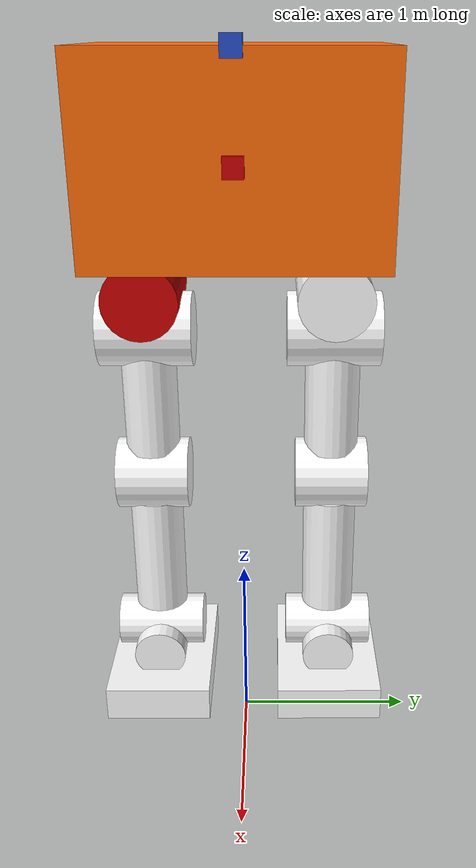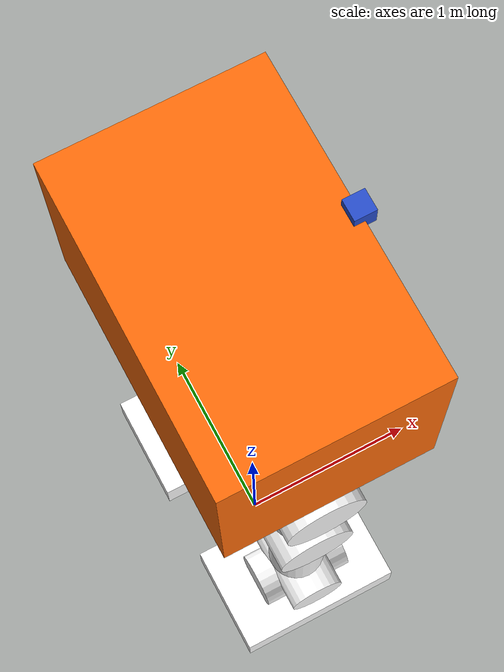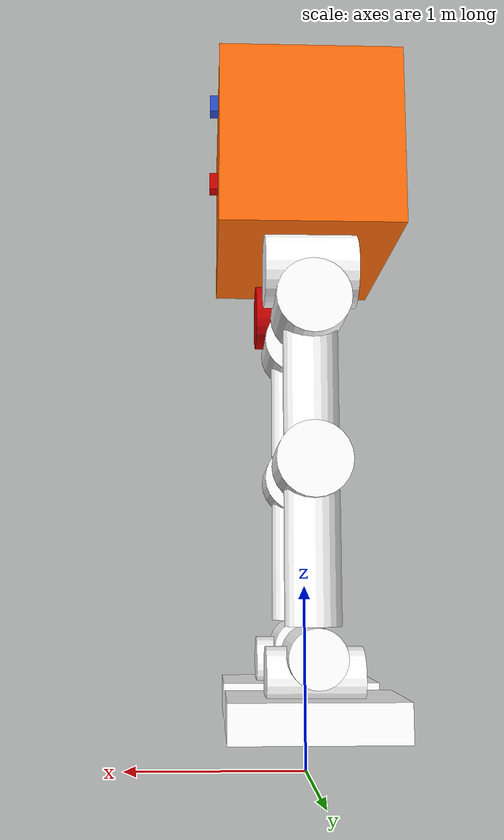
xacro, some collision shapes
<?xml version="1.0" ?>

<robot name="Asimo_E1" xmlns:xacro="http://www.ros.org/wiki/xacro">

 <!-- Start - Include -->

  <xacro:include filename="$(find asimo_e1_description)/urdf/links_joints.xacro"/>
  <xacro:include filename="$(find asimo_e1_description)/urdf/plugin.gazebo"/>
<!-- Start - Include -->
  <!-- Constants value-->
<xacro:property name="PI" value="3.1415926535897931"/>
<xacro:property name="M1" value="0.15"/>
<xacro:property name="M2" value="0.5"/>

<xacro:property name="cameraSize" value="0.1"/>
<xacro:property name="cameraMass" value="0.01"/>

<link_box name="camera"
              origin_rpy="0 0 0" origin_xyz="0 0 0"
              mass="${cameraMass}"
              ixx="1e-7" ixy="0" ixz="0" iyy="1e-7" iyz="0" izz="1e-7"
              size="${cameraSize} ${cameraSize} ${cameraSize}"
              color = 'red' />

<fixed_joint name="camera_joint" type="fixed"
                axis_xyz="0 1 0"
                origin_rpy="0 0 0" origin_xyz="0.5 0 3.4"
                parent="body" child="camera"/>

<fixed_joint name="hokuyo_joint" type="fixed"
                axis_xyz="0 1 0"
                origin_rpy="0 0 0" origin_xyz="0.5 0 3.9"
                parent="body" child="hokuyo"/>

<link_box name="body"
              origin_rpy="0 0 0" origin_xyz="0 0 3.4"
              mass="0.1"
              ixx="170.667" ixy="0" ixz="0"
              iyy="170.667" iyz="0"
              izz="170.667"
              size="1 1.5 1"
              color = 'orange' />

 <link_cylinder name="hip_l"
              origin_rpy="${PI/2}  0 ${PI/2}" origin_xyz="0 0 0"
              mass="${M2}"
              ixx="12.679" ixy="0" ixz="0"
              iyy="12.679" iyz="0"
              izz="0.651"
              color = 'red'
              radius="0.2" length="0.5" />

  <link_cylinder name="hip_r"
              origin_rpy="${PI/2}  0 ${PI/2}" origin_xyz="0 0 0"
              mass="${M1}"
              ixx="12.679" ixy="0" ixz="0"
              iyy="12.679" iyz="0"
              izz="0.651"
              color = 'white'
              radius="0.2" length="0.5" />

   <rot_joint name="body_hip_l" type="revolute"
           axis_xyz="1 0 0"
           origin_rpy="0 0 0" origin_xyz="0 -0.5 2.7"
           parent="body" child="hip_l"
           limit_e="1000" limit_l="-${PI/6}" limit_u="${PI/6}" limit_v="0.5" />

   <rot_joint name="body_hip_r" type="revolute"
           axis_xyz="1 0 0"
           origin_rpy="0 0 0" origin_xyz="0 0.5 2.7"
           parent="body" child="hip_r"
           limit_e="1000" limit_l="-${PI/6} " limit_u="${PI/6}" limit_v="0.5" />

  <link_cylinder name="lower_hip_r"
              origin_rpy="${PI/2}  0 0" origin_xyz="0 0 0"
              mass="${M1}"
              ixx="12.679" ixy="0" ixz="0"
              iyy="12.679" iyz="0"
              izz="0.651"
              color = 'white'
              radius="0.2" length="0.5" />

   <link_cylinder name="lower_hip_l"
              origin_rpy="${PI/2}  0 0" origin_xyz="0 0 0"
              mass="${M1}"
              ixx="12.679" ixy="0" ixz="0"
              iyy="12.679" iyz="0"
              izz="0.651"
              color = 'white'
              radius="0.2" length="0.5" />

  <rot_joint name="hip_to_lower_hip_r" type="revolute"
           axis_xyz="0 1 0"
           origin_rpy="0 0 0" origin_xyz="0 0 -0.2"
           parent="hip_r" child="lower_hip_r"
           limit_e="1000" limit_l="-${PI/3}" limit_u="${PI/6}" limit_v="0.5" />

  <rot_joint name="hip_to_lower_hip_l" type="revolute"
           axis_xyz="0 1 0"
           origin_rpy="0 0 0" origin_xyz="0 0 -0.2"
           parent="hip_l" child="lower_hip_l"
           limit_e="1000" limit_l="-${PI/3}" limit_u="${PI/3}" limit_v="0.5" />

  <link_cylinder name="leg_l"
              origin_rpy="0 0 ${PI/2}" origin_xyz="0 0 0"
              mass="${M1}"
              ixx="12.679" ixy="0" ixz="0"
              iyy="12.679" iyz="0"
              izz="0.651"
              color = 'white'
              radius="0.15" length="0.7" />

  <link_cylinder name="leg_r"
              origin_rpy="0 0 ${PI/2}" origin_xyz="0 0 0"
              mass="${M1}"
              ixx="12.679" ixy="0" ixz="0"
              iyy="12.679" iyz="0"
              izz="0.651"
              color = 'white'
              radius="0.15" length="0.7" />

  <fixed_joint name="lower_hip_to_leg_l" type="fixed"
           axis_xyz="0 0 1"
           origin_rpy="0 0 0" origin_xyz="0 0 -0.35"
           parent="lower_hip_l" child="leg_l"/>

  <fixed_joint name="lower_hip_to_leg_r" type="fixed"
           axis_xyz="0 0 1"
           origin_rpy="0 0 0" origin_xyz="0 0 -0.35"
           parent="lower_hip_r" child="leg_r" />

  <link_cylinder name="knee_r"
              origin_rpy="${PI/2}  0 0" origin_xyz="0 0 0"
              mass="${M1}"
              ixx="12.679" ixy="0" ixz="0"
              iyy="12.679" iyz="0"
              izz="0.651"
              color = 'white'
              radius="0.2" length="0.4" />

  <rot_joint name="leg_to_knee_r" type="revolute"
           axis_xyz="0 1 0"
           origin_rpy="0 0 0" origin_xyz="0 0 -0.5"
           parent="leg_r" child="knee_r"
           limit_e="2000" limit_l="0" limit_u="${PI/4}" limit_v="0.5" />

  <link_cylinder name="knee_l"
              origin_rpy="${PI/2}  0 0" origin_xyz="0 0 0"
              mass="${M1}"
              ixx="12.679" ixy="0" ixz="0"
              iyy="12.679" iyz="0"
              izz="0.651"
              color = 'white'
              radius="0.2" length="0.4" />

  <rot_joint name="leg_to_knee_l" type="revolute"
           axis_xyz="0 1 0"
           origin_rpy="0 0 0" origin_xyz="0 0 -0.5"
           parent="leg_l" child="knee_l"
           limit_e="2000" limit_l="0" limit_u="${PI/4}" limit_v="0.5" />

  <link_cylinder name="foot_l"
              origin_rpy="0 0 ${PI/2}" origin_xyz="0 0 0"
              mass="${M1}"
              ixx="12.679" ixy="0" ixz="0"
              iyy="12.679" iyz="0"
              izz="0.651"
              color = 'white'
              radius="0.15" length="0.7" />

  <fixed_joint name="knee_to_foot_l" type="fixed"
           axis_xyz="0 0 1"
           origin_rpy="0 0 0" origin_xyz="0 0 -0.5"
           parent="knee_l" child="foot_l" />

   <link_cylinder name="foot_r"
              origin_rpy="0 0 ${PI/2}" origin_xyz="0 0 0"
              mass="${M1}"
              ixx="12.679" ixy="0" ixz="0"
              iyy="12.679" iyz="0"
              izz="0.651"
              color = 'white'
              radius="0.15" length="0.7" />

  <fixed_joint name="knee_to_foot_r" type="fixed"
           axis_xyz="0 0 1"
           origin_rpy="0 0 0" origin_xyz="0 0 -0.5"
           parent="knee_r" child="foot_r" />

  <link_cylinder name="ankle_r"
              origin_rpy="${PI/2}  0 0" origin_xyz="0 0 0"
              mass="${M1}"
              ixx="12.679" ixy="0" ixz="0"
              iyy="12.679" iyz="0"
              izz="0.651"
              color = 'white'
              radius="0.15" length="0.5" />

  <rot_joint name="foot_to_ankle_r" type="revolute"
           axis_xyz="0 1 0"
           origin_rpy="0 0 0" origin_xyz="0 0 -0.5"
           parent="foot_r" child="ankle_r"
           limit_e="10000" limit_l="-${PI/4}" limit_u="${PI/24}" limit_v="0.5" />

  <link_cylinder name="ankle_l"
            origin_rpy="${PI/2}  0 0" origin_xyz="0 0 0"
            mass="${M1}"
            ixx="12.679" ixy="0" ixz="0"
            iyy="12.679" iyz="0"
            izz="0.651"
            color = 'white'
            radius="0.15" length="0.5" />

  <rot_joint name="foot_to_ankle_l" type="revolute"
           axis_xyz="0 1 0"
           origin_rpy="0 0 0" origin_xyz="0 0 -0.5"
           parent="foot_l" child="ankle_l"
           limit_e="10000" limit_l="-${PI/4}" limit_u="${PI/24}" limit_v="0.5" />

  <link_cylinder name="ankle_lower_r"
          origin_rpy="${PI/2}  0 ${PI/2}" origin_xyz="0 0 0"
          mass="${M1}"
          ixx="12.679" ixy="0" ixz="0"
          iyy="12.679" iyz="0"
          izz="0.651"
          color = 'white'
          radius="0.15" length="0.5" />

  <rot_joint name="ankle_to_ankle_lower_r" type="revolute"
           axis_xyz="0 1 0"
           origin_rpy="0 0 0" origin_xyz="0 0 -0.1"
           parent="ankle_r" child="ankle_lower_r"
           limit_e="10000" limit_l="-${PI/12}" limit_u="${PI/24}" limit_v="0.5" />

  <link_cylinder name="ankle_lower_l"
          origin_rpy="${PI/2}  0 ${PI/2}" origin_xyz="0 0 0"
          mass="${M1}"
          ixx="12.679" ixy="0" ixz="0"
          iyy="12.679" iyz="0"
          izz="0.651"
          color = 'white'
          radius="0.15" length="0.5" />

  <rot_joint name="ankle_to_ankle_lower_l" type="revolute"
           axis_xyz="0 1 0"
           origin_rpy="0 0 0" origin_xyz="0 0 -0.1"
           parent="ankle_l" child="ankle_lower_l"
           limit_e="10000" limit_l="-${PI/12}" limit_u="${PI/24}" limit_v="0.5" />

  <link_box name="toe_r"
              origin_rpy="${PI/2} 0 ${PI/2}" origin_xyz="0 0 0"
              mass="0.1"
              ixx="170.667" ixy="0" ixz="0"
              iyy="170.667" iyz="0"
              izz="170.667"
              color = 'white'
              size="0.6 0.2 0.9" />

  <fixed_joint name="ankle_lower_to_toe_r" type="fixed"
          axis_xyz="0 1 0"
          origin_rpy="0 0 0" origin_xyz="0 0 -0.2"
          parent="ankle_lower_r" child="toe_r"/>

  <link_box name="toe_l"
              origin_rpy="${PI/2} 0 ${PI/2}" origin_xyz="0 0 0"
              mass="0.1"
              ixx="170.667" ixy="0" ixz="0"
              iyy="170.667" iyz="0"
              izz="170.667"
              color = 'white'
              size="0.6 0.2 0.9" />

  <fixed_joint name="ankle_lower_to_toe_l" type="fixed"
          axis_xyz="0 1 0"
          origin_rpy="0 0 0" origin_xyz="0 0 -0.2"
          parent="ankle_lower_l" child="toe_l" />

</robot>

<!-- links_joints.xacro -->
<robot xmlns:xacro="http://www.ros.org/wiki/xacro">

  <xacro:macro name="rot_joint" params="name type axis_xyz origin_rpy origin_xyz parent child limit_e limit_l limit_u limit_v">
    <joint name="${name}" type="${type}">
      <axis xyz="${axis_xyz}" />
      <limit effort="${limit_e}" lower="${limit_l}" upper="${limit_u}" velocity="${limit_v}" />
      <origin rpy="${origin_rpy}" xyz="${origin_xyz}" />
      <parent link="${parent}" />
      <child link="${child}" />
    </joint>
    <transmission name="trans_${name}">
      <type>transmission_interface/SimpleTransmission</type>
      <joint name="${name}">
        <hardwareInterface>hardware_interface/EffortJointInterface</hardwareInterface>
      </joint>
      <actuator name="motor_${name}">
        <hardwareInterface>hardware_interface/EffortJointInterface</hardwareInterface>
        <mechanicalReduction>1</mechanicalReduction>
      </actuator>
    </transmission>
  </xacro:macro>

    <xacro:macro name="fixed_joint" params="name type axis_xyz origin_rpy origin_xyz parent child">
    <joint name="${name}" type="${type}">
      <axis xyz="${axis_xyz}" />

      <origin rpy="${origin_rpy}" xyz="${origin_xyz}" />
      <parent link="${parent}" />
      <child link="${child}" />
    </joint>
  </xacro:macro>

  <xacro:macro name="link_cylinder" params="name color origin_xyz origin_rpy radius length mass ixx ixy ixz iyy iyz izz">
    <link name="${name}">
      <inertial>
        <mass value="${mass}" />
        <origin rpy="${origin_rpy}" xyz="${origin_xyz}" />
        <inertia ixx="${ixx}" ixy="${ixy}" ixz="${ixz}" iyy="${iyy}" iyz="${iyz}" izz="${izz}" />
      </inertial>
      <collision>
        <origin rpy="${origin_rpy}" xyz="${origin_xyz}" />
        <geometry>
          <cylinder radius="${radius}" length="${length}" />
        </geometry>
      </collision>
      <visual>
        <origin rpy="${origin_rpy}" xyz="${origin_xyz}" />
        <geometry>
          <cylinder radius="${radius}" length="${length}" />
        </geometry>
          <material name="${color}"/>
      </visual>
    </link>
  </xacro:macro>

  <xacro:macro name="link_box" params="name color origin_xyz origin_rpy size mass ixx ixy ixz iyy iyz izz">
    <link name="${name}">
      <inertial>
        <mass value="${mass}" />
        <origin rpy="${origin_rpy}" xyz="${origin_xyz}" />
        <inertia ixx="${ixx}" ixy="${ixy}" ixz="${ixz}" iyy="${iyy}" iyz="${iyz}" izz="${izz}" />
      </inertial>
      <collision>
        <origin rpy="${origin_rpy}" xyz="${origin_xyz}" />
        <geometry>
          <box size="${size}" />
        </geometry>
      </collision>
      <visual>
        <origin rpy="${origin_rpy}" xyz="${origin_xyz}" />
        <geometry>
          <box size="${size}" />
        </geometry>
           <material name="${color}"/>
      </visual>
    </link>
  </xacro:macro>

  <!-- Hokuyo Laser -->
  <link name="hokuyo">
    <collision>
      <origin xyz="0 0 0" rpy="0 0 0"/>
      <geometry>
    <box size="0.1 0.1 0.1"/>
      </geometry>
    </collision>

    <visual>
      <origin xyz="0 0 0" rpy="0 0 0"/>
      <geometry>
        <mesh filename="package://asimo_e1_description/meshes/hokuyo.dae"/>
      </geometry>
    </visual>

    <inertial>
      <mass value="1e-5" />
      <origin xyz="0 0 0" rpy="0 0 0"/>
      <inertia ixx="1e-6" ixy="0" ixz="0" iyy="1e-6" iyz="0" izz="1e-6" />
    </inertial>
  </link>

<!-- Color -->

 <material name="black">
    <color rgba="0.0 0.0 0.0 1.0"/>
  </material>

  <material name="blue">
    <color rgba="0.0 0.0 0.8 1.0"/>
  </material>

  <material name="green">
    <color rgba="0.0 0.8 0.0 1.0"/>
  </material>

  <material name="grey">
    <color rgba="0.2 0.2 0.2 1.0"/>
  </material>

  <material name="orange">
    <color rgba="${255/255} ${108/255} ${10/255} 1.0"/>
  </material>

  <material name="brown">
    <color rgba="${222/255} ${207/255} ${195/255} 1.0"/>
  </material>

  <material name="red">
    <color rgba="0.8 0.0 0.0 1.0"/>
  </material>

  <material name="white">
    <color rgba="1.0 1.0 1.0 1.0"/>
  </material>

</robot>
